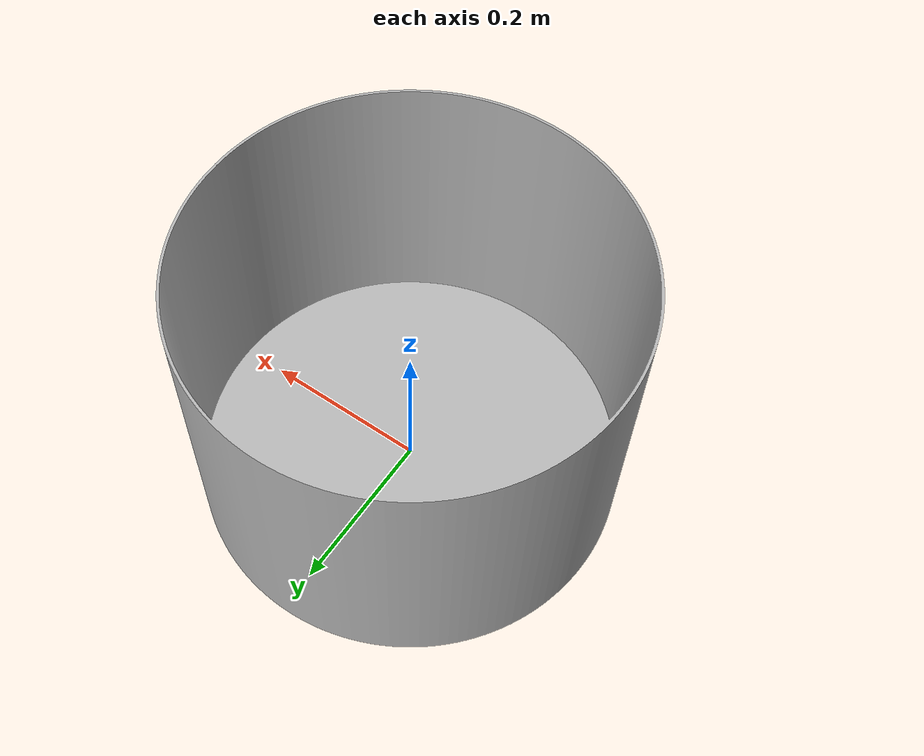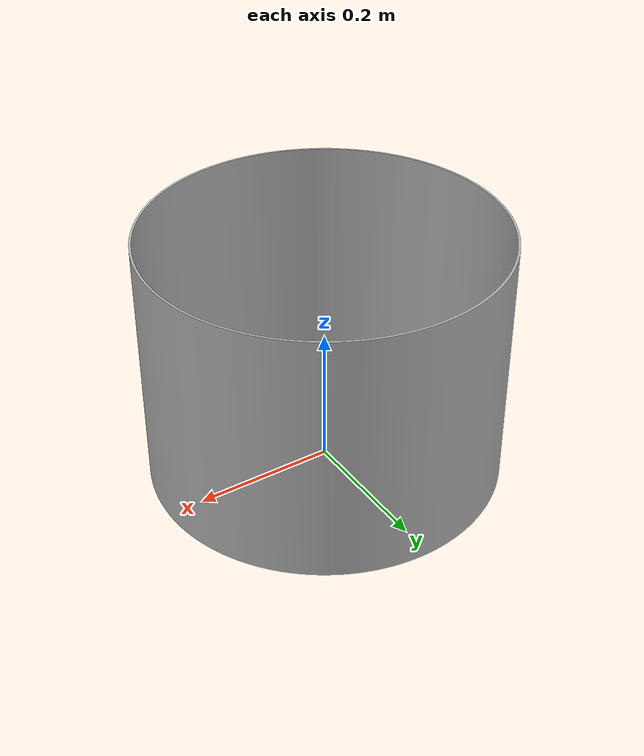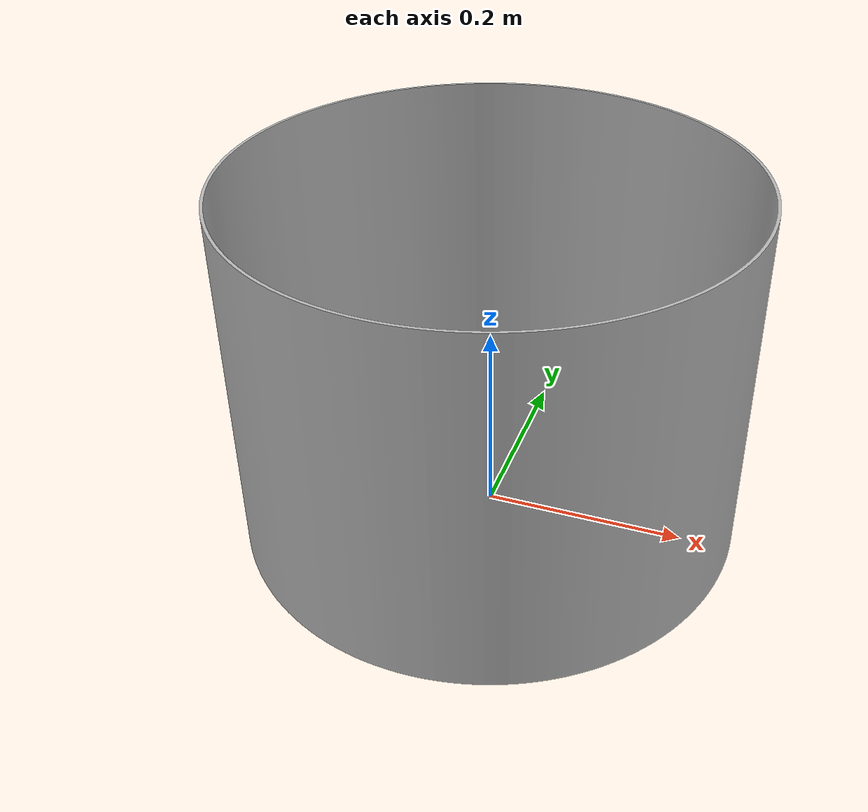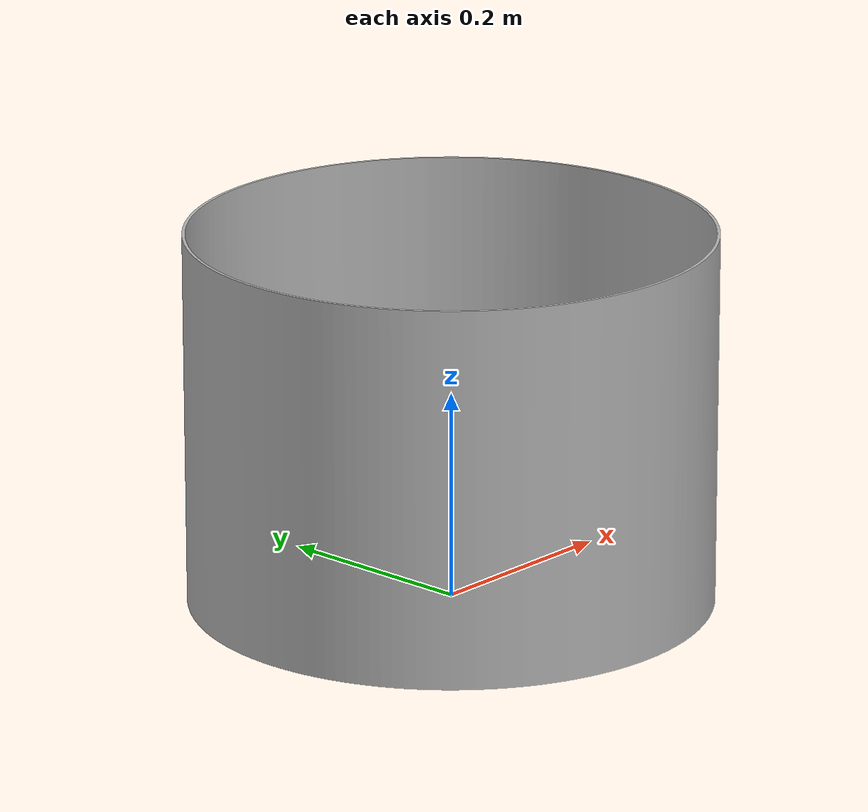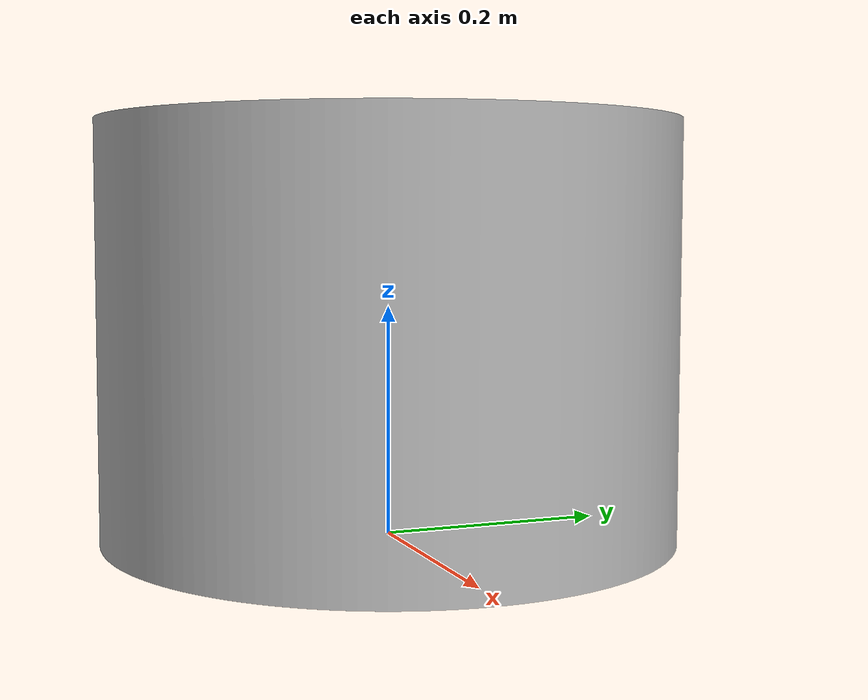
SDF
<?xml version='1.0'?>
<sdf version='1.6'>
  <model name='hoop'>
    <link name='hoop_link'>
      <inertial>
        <mass>1</mass>
        <inertia>
          <ixx>0.145833</ixx>
          <ixy>0</ixy>
          <ixz>0</ixz>
          <iyy>0.145833</iyy>
          <iyz>0</iyz>
          <izz>0.125</izz>
        </inertia>
        <pose frame=''>0 0 0.27 0 0 0</pose>
      </inertial>
      <self_collide>0</self_collide>
      <kinematic>0</kinematic>
      <gravity>1</gravity>
      <visual name='visual'>
        <geometry>
          <mesh>
            <uri>model://meshes/visual/hoop.stl</uri>
          </mesh>
        </geometry>
        <pose frame=''>0 0 0 0 0 0</pose>
        <material name="grey"/>
      </visual>
      <collision name='collision'>
        <geometry>
          <mesh>
            <uri>model://meshes/visual/hoop.stl</uri>
          </mesh>
        </geometry>
        <pose frame=''>0 0 0 0 -0 0</pose>
      </collision>
    </link>
    <static>0</static>
    <allow_auto_disable>1</allow_auto_disable>
  </model>
</sdf>
